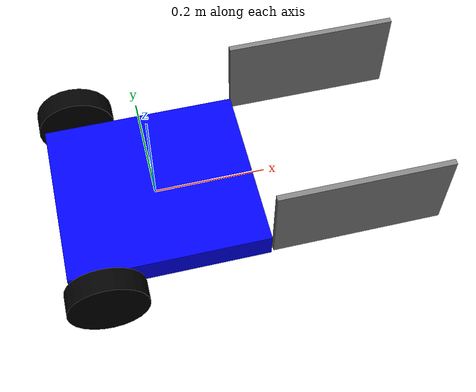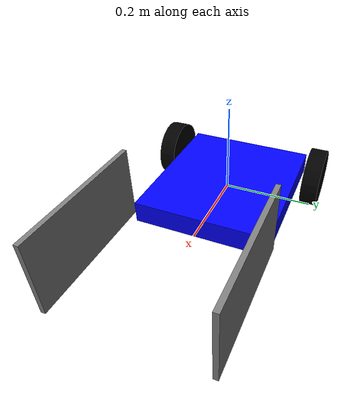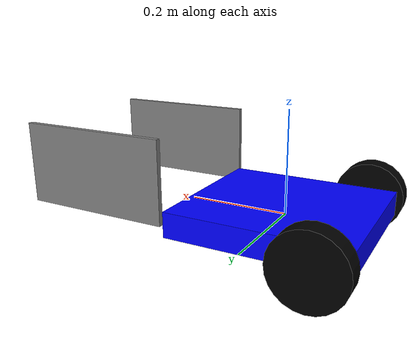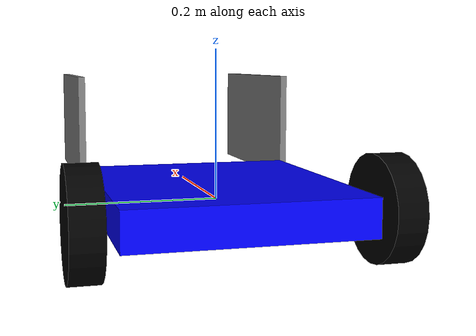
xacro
<?xml version="1.0"?>
<!-- three_wheeled_robot.xacro -->
<robot xmlns:xacro="http://www.ros.org/wiki/xacro" name="three_wheeled_robot">

  <!-- Include property definitions -->
  <xacro:include filename="$(find pde4430_coursework2)/urdf/properties.xacro" />

  <!-- Include robot macros -->
  <xacro:include filename="$(find pde4430_coursework2)/urdf/macros.xacro" />

  <!-- Include Gazebo configurations -->
  <xacro:include filename="$(find pde4430_coursework2)/urdf/gazebo.xacro" />

  <!-- Base Link -->
  <link name="base_link">
    <origin xyz="0.2 0.1 ${base_height/2}" rpy="0 0 0"/>
    <visual>
      <geometry>
        <box size="${base_length} ${base_width} ${base_height/2}"/>
      </geometry>
      <material name="blue">
        <color rgba="0 0 1 1"/>
      </material>
    </visual>
    <collision>
      <geometry>
        <box size="${base_length} ${base_width} ${base_height}"/>
      </geometry>
    </collision>
    <inertial>
      <mass value="0.5"/>
      <inertia ixx="0.001" ixy="0" ixz="0" iyy="0.001" iyz="0" izz="0.001"/>
      <origin xyz="0 0 0" rpy="0 0 0"/>
    </inertial>
  </link>

  <xacro:caster_wheel />

  <xacro:wheel prefix="left" x="${-base_length/3}" y="1"/>
  <xacro:wheel prefix="right" x="${-base_length/3}" y="-1"/>

  <xacro:guide_wall prefix="left" side="1"/>
  <xacro:guide_wall prefix="right" side="-1"/>
</robot>

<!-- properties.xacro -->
<robot xmlns:xacro="http://www.ros.org/wiki/xacro">
  <!-- Robot Properties -->
  <xacro:property name="base_width" value="0.31"/>
  <xacro:property name="base_length" value="0.35"/>
  <xacro:property name="base_height" value="0.1"/>
  <xacro:property name="wheel_radius" value="0.07"/>
  <xacro:property name="wheel_width" value="0.04"/>
  <xacro:property name="caster_radius" value="0.02"/>
  <xacro:property name="arm_length" value="0.1"/>
  <xacro:property name="arm_radius" value="0.015"/>

  <xacro:property name="wall_length" value="0.3"/>
  <xacro:property name="wall_thickness" value="0.01"/>
  <xacro:property name="wall_height" value="0.16"/>
</robot>

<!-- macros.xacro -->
<robot xmlns:xacro="http://www.ros.org/wiki/xacro">
  <!-- Wheel Macro -->
  <xacro:macro name="wheel" params="prefix x y">
    <link name="${prefix}_wheel">
      <visual>
        <geometry>
          <cylinder radius="${wheel_radius}" length="${wheel_width}"/>
        </geometry>
        <material name="black">
          <color rgba="0 0 0 1"/>
        </material>
      </visual>
      <collision>
        <geometry>
          <cylinder radius="${wheel_radius}" length="${2 * wheel_width}"/>
        </geometry>
      </collision>
      <inertial>
        <mass value="1"/>
        <inertia ixx="0.0007" ixy="0" ixz="0" iyy="0.0007" iyz="0" izz="0.0007"/>
      </inertial>
    </link>

    <joint name="${prefix}_wheel_joint" type="continuous">
      <parent link="base_link"/>
      <child link="${prefix}_wheel"/>
      <origin xyz="${x} ${y * (base_width/2 + wheel_radius/2)} 0" rpy="${pi/2} 0 0"/>  <!-- Corrected RPY and Z offset -->
      <axis xyz="0 0 -1"/>
      <joint_properties damping="0.5" friction="0.5"/>
    </joint>
  </xacro:macro>

  <!-- Caster Wheel Macro -->
  <xacro:macro name="caster_wheel">
    <link name="caster_wheel">
      <visual>
        <geometry>
          <sphere radius="${caster_radius}"/>
        </geometry>
        <material name="grey">
          <color rgba="0.5 0.5 0.5 1"/>
        </material>
      </visual>
      <collision>
        <geometry>
          <sphere radius="${caster_radius}"/>
        </geometry>
      </collision>
      <inertial>
        <mass value="0.3"/>
        <inertia ixx="0.00018" ixy="0" ixz="0" iyy="0.00018" iyz="0" izz="0.00018"/>
        <origin xyz="0 0 0" rpy="0 0 0" />
      </inertial>
    </link>

    <joint name="caster_wheel_joint" type="fixed">
      <parent link="base_link"/>
      <child link="caster_wheel"/>
      <origin xyz="${base_length/3.3} 0 ${-caster_radius}" rpy="0 0 0"/>  <!-- Corrected Z offset for caster wheel -->
      <dynamics damping="0.01"/>
    </joint>
  </xacro:macro>

  <!-- Arm Macro -->
  <xacro:macro name="arm" params="prefix side_mult">
    <link name="${prefix}_arm">
      <visual>
        <geometry>
          <cylinder radius="${arm_radius}" length="${arm_length}"/>
        </geometry>
        <material name="red">
          <color rgba="1 0 0 1"/>
        </material>
      </visual>
      <collision>
        <geometry>
          <cylinder radius="${arm_radius}" length="${arm_length}"/>
        </geometry>
      </collision>
      <inertial>
        <mass value="0.25"/>
        <inertia ixx="0.0001" ixy="0" ixz="0" iyy="0.0001" iyz="0" izz="0.0001"/>
      </inertial>
    </link>

    <joint name="${prefix}_arm_joint" type="fixed">
      <parent link="base_link"/>
      <child link="${prefix}_arm"/>
      <origin xyz="${base_length/2} ${side_mult * (base_width /2 - 0.005)} 0.04"/>  <!-- Corrected Z offset for arm joint -->
      <axis xyz="0 1 0"/>
      <!-- Adjusted limits for arm movement -->
    </joint>

    <!-- Gripper -->
    <link name="${prefix}_gripper">
      <visual>
        <geometry>
          <box size="${arm_length} 0.02 0.08"/>
        </geometry>
        <material name="grey">
          <color rgba="0.5 0.5 0.5 1"/>
        </material>
      </visual>
      <collision>
        <geometry>
          <box size="${arm_length} 0.02 0.08"/>
        </geometry>
      </collision>
      <inertial>
        <mass value="0.2"/>
        <inertia ixx="0.00005" ixy="0" ixz="0" iyy="0.0005" iyz="0" izz="0.00005"/>
      </inertial>
    </link>

    <joint name="${prefix}_gripper_joint" type="fixed">
      <parent link="${prefix}_arm"/>
      <child link="${prefix}_gripper"/>
      <origin xyz="${arm_length/2} 0 0"/>
    </joint>
  </xacro:macro>

  <xacro:macro name="guide_wall" params="side prefix">
    <link name="${prefix}_wall">
      <visual>
        <geometry>
          <box size="${wall_length} ${wall_thickness} ${wall_height}"/>
        </geometry>
        <material name="grey">
          <color rgba="0.5 0.5 0.5 1"/>
        </material>
      </visual>
      <collision>
        <geometry>
          <box size="${wall_length} ${wall_thickness} ${wall_height}"/>
        </geometry>
      </collision>
      <inertial>
        <mass value="0.3"/>
        <inertia ixx="0.003" ixy="0" ixz="0" iyy="0.003" iyz="0" izz="0.003"/>
      </inertial>
   </link>

   <joint name="${prefix}_wall_joint" type="fixed">
      <parent link="base_link"/>
      <child link="${prefix}_wall"/>
      <origin xyz="${base_length/2 + wall_length/2} ${side * (base_width/2 + wall_thickness/2)} ${wall_height/2}" rpy="0 0 0"/>
    </joint>
  </xacro:macro>

</robot>
